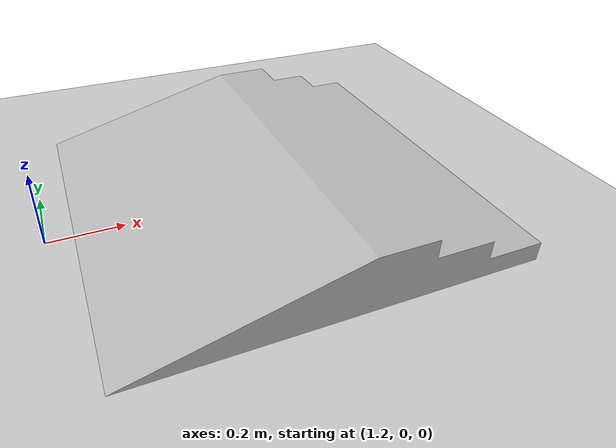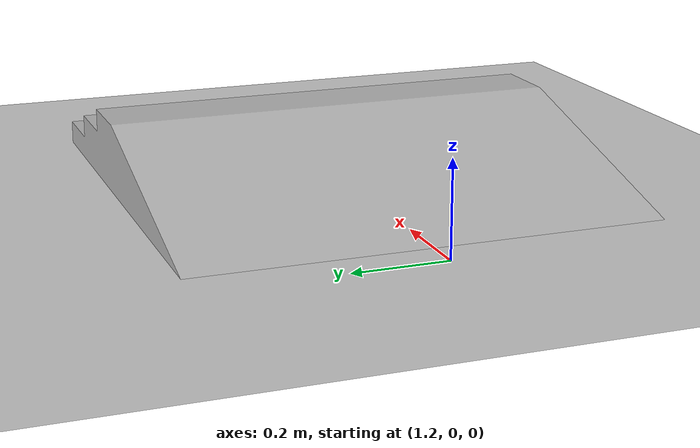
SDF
<?xml version="1.0" ?>
<sdf version="1.4">
  <world name="default">

    <!-- A global light source -->
    <include>
      <uri>model://sun</uri>
    </include>

    <include>
    <uri>model://ground_plane</uri>
    <pose>0 0 0 0 0 0</pose>
    <surface>
        <contact>
        <ode>
            <soft_cfm>0.00001</soft_cfm> <!-- Reduce numerical instability -->
            <soft_erp>0.8</soft_erp> <!-- Increase energy absorption -->
            <kp>10</kp>  <!-- High stiffness -->
            <kd>100000.0</kd>  <!-- Damping -->
        </ode>
        </contact>
        <bounce>
        <restitution_coefficient>0.0</restitution_coefficient> <!-- No bounce -->
        <threshold>0.5</threshold>
        </bounce>
        <friction>
        <ode>
            <mu>2.5</mu>  <!-- Increase friction -->
            <mu2>2.5</mu2>
            <slip1>0.0</slip1>
            <slip2>0.0</slip2>
        </ode>
        </friction>
    </surface>
    </include>

    <model name="ramp3">
      <static>true</static>
      <link name="rampStair_link">
        <pose>2 0.5 0.15 1.57 0 0</pose>
        <collision name="collision">
        <geometry>
            <mesh>
            <uri>model://ramp3/meshes/SlopeStair.STL</uri>
            <scale>1 1 1</scale>
            </mesh>
        </geometry>
        <surface>
            <contact>
            <ode>
                <soft_cfm>0.00001</soft_cfm> <!-- Reduce numerical instability -->
                <soft_erp>0.8</soft_erp> <!-- Increase energy absorption -->
                <kp>10</kp>
                <kd>100000.0</kd>
            </ode>
            </contact>
            <bounce>
            <restitution_coefficient>0.0</restitution_coefficient>
            <threshold>0.5</threshold>
            </bounce>
            <friction>
            <ode>
                <mu>5.0</mu>
                <mu2>5.0</mu2>
                <slip1>0.0</slip1>
                <slip2>0.0</slip2>
            </ode>
            </friction>
        </surface>
        </collision>
        <visual name="visual">
          <geometry>
            <mesh>
            <uri>model://ramp3/meshes/SlopeStair.STL</uri>
              <scale>1 1 1</scale>
            </mesh>
          </geometry>
        </visual>
      </link>
    </model>

  </world>
</sdf>
